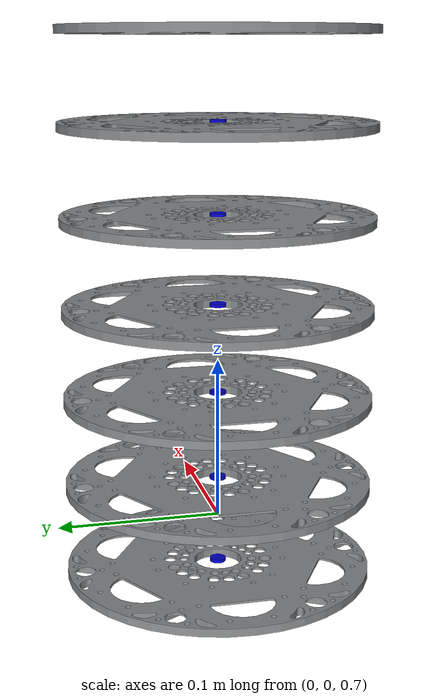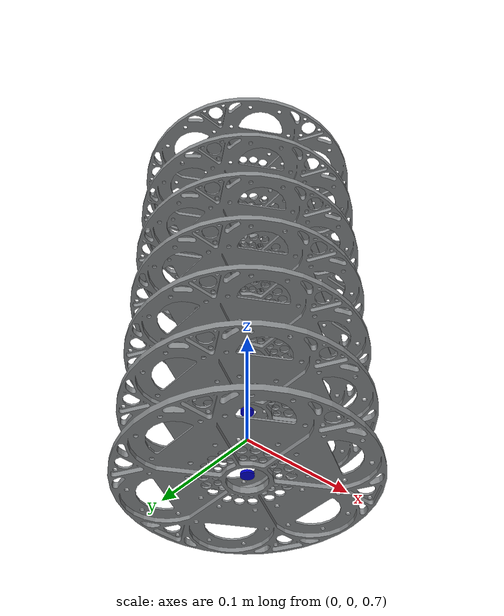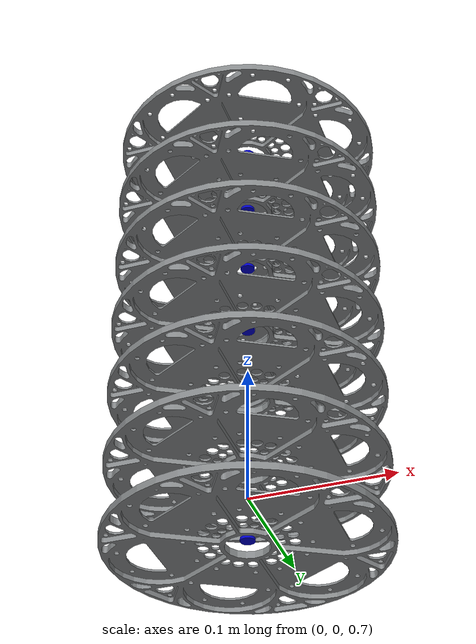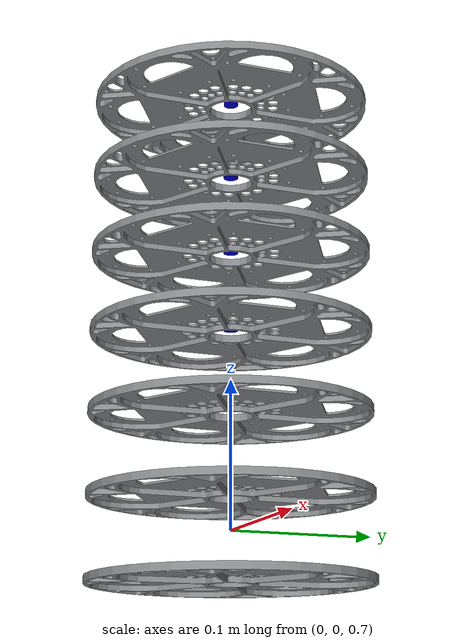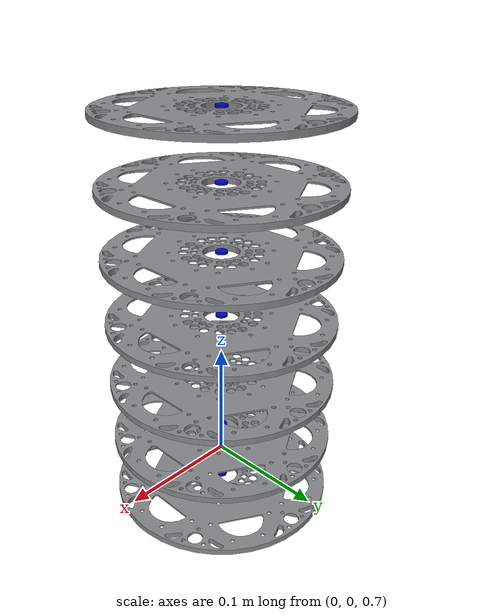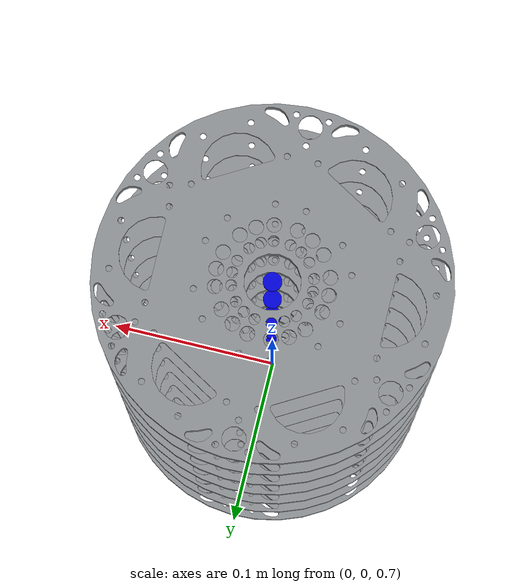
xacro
<?xml version="1.0"?>
<robot name="origarmRigidKE"
  xmlns:xacro="http://ros.org/wiki/xacro">

  <xacro:property name="radiusPlate" value="0.095" />

  <xacro:property name="alpha_seg_min" value="0" />
  <xacro:property name="alpha_seg_max" value="0.5" />
  <xacro:property name="beta_seg_min" value="${-pi*2}" />
  <xacro:property name="beta_seg_max" value="${pi*2}" />
  <xacro:property name="length_seg_offset" value="0.055" />
  <xacro:property name="length_seg_min" value="-0.02" />
  <xacro:property name="length_seg_max" value="0.03" />

  <!-- Import Rviz colors -->
  <xacro:include filename="$(find origarm_ros)/model/urdf/materials.xacro" />

  <link name="world"/>

  <joint name="fixed" type="fixed">
    <parent link="world"/>
    <child link="plate_-1"/>
    <origin xyz="0 0 1" rpy="${pi} 0 0"/>
  </joint>

  <xacro:macro name="plate" params="platenum">
    <link name="plate_${platenum}">
      <visual>
        <origin rpy="0 0 0" xyz="0 0 0"/>
        <geometry>
          <mesh filename="package://origarm_ros/model/mesh/origarmPlate_m.STL"/>
        </geometry>
        <material name="aluminum"/>
      </visual>
      <collision>
        <geometry>
          <cylinder radius="${radiusPlate}" length="0.005"/>
        </geometry>
      </collision>
      <inertial>
        <origin xyz="0 0 0" rpy="0 0 0"/>
        <mass value="0.127" />
        <inertia ixx="0.00032197" ixy="0.0" ixz="0.0" iyy="0.00032197" iyz="0.0" izz="0.00064284" />
      </inertial>
    </link>
  </xacro:macro>

  <xacro:macro name="phantom_link" params="snum num_in">
    <link name="phantom_link_${snum}_${num_in}">
      <visual>
        <geometry>
          <cylinder radius="0.005" length="0.002"/>
        </geometry>
        <origin xyz="0 0 0" rpy="0 0 0"/>
        <material name="blue"/>
      </visual>
      <inertial>
        <origin xyz="0 0 0" rpy="0 0 0"/>
        <mass value="0.01" />
        <inertia ixx="0.001" ixy="0.0" ixz="0.0" iyy="0.001" iyz="0.0" izz="0.001" />
      </inertial>
    </link>
  </xacro:macro>

  <xacro:macro name="phantom_joint_1_beta" params="snum">
    <joint name="phantom_joint_segment_${snum}_1_beta" type="revolute">
      <parent link="plate_${snum-1}"/>
      <child link="phantom_link_${snum}_${1}"/>
      <axis xyz="0 0 1"/>
      <origin xyz="0 0 0" />
      <limit effort="200" lower="${beta_seg_min}" upper="${beta_seg_max}" velocity="20"/>
      <dynamics damping="0.7" friction="0.3"/>
    </joint>
  </xacro:macro>

  <xacro:macro name="phantom_joint_2_alpha2" params="snum">
    <joint name="phantom_joint_segment_${snum}_2_alpha2" type="revolute">
      <parent link="phantom_link_${snum}_${1}"/>
      <child link="phantom_link_${snum}_${2}"/>
      <axis xyz="0 1 0"/>
      <origin xyz="0 0 0" />
      <limit effort="200" lower="${alpha_seg_min/2}" upper="${alpha_seg_max/2}" velocity="20"/>
      <dynamics damping="0.7" friction="0.3"/>
    </joint>
  </xacro:macro>

  <xacro:macro name="phantom_joint_3_translation" params="snum">
    <joint name="phantom_joint_segment_${snum}_3_translation" type="prismatic">
      <parent link="phantom_link_${snum}_${2}"/>
      <child link="phantom_link_${snum}_${3}"/>
      <axis xyz="0 0 1"/>
      <origin xyz="0 0 ${length_seg_offset}"/>
      <limit effort="200" lower="${length_seg_min}" upper="${length_seg_max}" velocity="20"/>
      <dynamics damping="0.7" friction="0.5"/>
    </joint>
  </xacro:macro>

  <xacro:macro name="phantom_joint_4_alpha2" params="snum">
    <joint name="phantom_joint_segment_${snum}_4_alpha2" type="revolute">
      <parent link="phantom_link_${snum}_${3}"/>
      <child link="phantom_link_${snum}_${4}"/>
      <axis xyz="0 1 0"/>
      <origin xyz="0 0 0" />
      <mimic joint="phantom_joint_segment_${snum}_2_alpha2" multiplier="1" offset="0" />
      <limit effort="200" lower="${alpha_seg_min/2}" upper="${alpha_seg_max/2}" velocity="20"/>
      <dynamics damping="0.7" friction="0.3"/>
    </joint>
  </xacro:macro>

  <xacro:macro name="phantom_joint_5_betaN" params="snum">
    <joint name="phantom_joint_segment_${snum}_5_betaN" type="revolute">
      <parent link="phantom_link_${snum}_${4}"/>
      <child link="plate_${snum}"/>
      <axis xyz="0 0 1"/>
      <origin xyz="0 0 0" />
      <mimic joint="phantom_joint_segment_${snum}_1_beta" multiplier="-1" offset="0" />
      <limit effort="200" lower="${beta_seg_min}" upper="${beta_seg_max}" velocity="20"/>
      <dynamics damping="0.7" friction="0.3"/>
    </joint>
  </xacro:macro>

  <xacro:macro name="segment" params="segnum">
    <xacro:phantom_joint_1_beta snum="${segnum}"/>
    <xacro:phantom_link snum="${segnum}" num_in="1"/>
    <xacro:phantom_joint_2_alpha2 snum="${segnum}"/>
    <xacro:phantom_link snum="${segnum}" num_in="2"/>
    <xacro:phantom_joint_3_translation snum="${segnum}"/>
    <xacro:phantom_link snum="${segnum}" num_in="3"/>
    <xacro:phantom_joint_4_alpha2 snum="${segnum}"/>
    <xacro:phantom_link snum="${segnum}" num_in="4"/>
    <xacro:phantom_joint_5_betaN snum="${segnum}"/>
    <xacro:plate platenum="${segnum}"/>
  </xacro:macro>

  <xacro:plate platenum="-1"/>
  <xacro:segment segnum="0"/>
  <xacro:segment segnum="1"/>
  <xacro:segment segnum="2"/>
  <xacro:segment segnum="3"/>
  <xacro:segment segnum="4"/>
  <xacro:segment segnum="5"/>

  <!-- ros_control plugin      -->
  <!-- Add gazebo transmission -->
  <gazebo>
    <plugin name="gazebo_ros_control" filename="libgazebo_ros_control.so">
      <robotNamespace>/origarmRigidKE</robotNamespace>
    </plugin>
  </gazebo>

  <xacro:macro name="joint_trans" params="segnum jointname">
    <transmission name="trans_segment_${segnum}_${jointname}">
      <type>transmission_interface/SimpleTransmission</type>
      <joint name="phantom_joint_segment_${segnum}_${jointname}">
        <hardwareInterface>hardware_interface/PositionJointInterface</hardwareInterface>
      </joint>
      <actuator name="actuator_segment_${segnum}_${jointname}">
        <hardwareInterface>hardware_interface/PositionJointInterface</hardwareInterface>
        <mechanicalReduction>1</mechanicalReduction>
      </actuator>
    </transmission>
  </xacro:macro>

  <xacro:macro name="seg_trans" params="snum">
    <xacro:joint_trans segnum="${snum}" jointname="1_beta"/>
    <xacro:joint_trans segnum="${snum}" jointname="2_alpha2"/>
    <xacro:joint_trans segnum="${snum}" jointname="3_translation"/>
    <xacro:joint_trans segnum="${snum}" jointname="4_alpha2"/>
    <xacro:joint_trans segnum="${snum}" jointname="5_betaN"/>
  </xacro:macro>

  <xacro:seg_trans snum="0"/>
  <xacro:seg_trans snum="1"/>
  <xacro:seg_trans snum="2"/>
  <xacro:seg_trans snum="3"/>
  <xacro:seg_trans snum="4"/>
  <xacro:seg_trans snum="5"/>

  <!-- Add gazebo dynamic labels for links-->
  <!-- gazebo dynamics of phantom links -->
  <xacro:macro name="gazebo_dynamics_link_phantom" params="snum lnum">
    <gazebo reference="phantom_link_${snum}_${lnum}">
      <gravity>false</gravity>
      <dampingFactor>0.1</dampingFactor>
      <mu1>0.2</mu1>
      <mu2>0.2</mu2>
      <kp>1e15</kp>
      <kd>1e13</kd>
      <selfCollide>true</selfCollide>
    </gazebo>
  </xacro:macro>

  <!-- gazebo dynamics of plates -->
  <xacro:macro name="gazebo_dynamics_link_plate" params="snum">
    <gazebo reference="plate_${snum}">
      <material>Gazebo/aluminum</material>
      <dampingFactor>0.1</dampingFactor>
      <mu1>0.2</mu1>
      <mu2>0.2</mu2>
      <kp>1e15</kp>
      <kd>1e13</kd>
    </gazebo>
  </xacro:macro>

  <xacro:macro name="gazebo_dynamics_link_seg" params="segnum">
    <xacro:gazebo_dynamics_link_phantom snum="${segnum}" lnum="0"/>
    <xacro:gazebo_dynamics_link_phantom snum="${segnum}" lnum="1"/>
    <xacro:gazebo_dynamics_link_phantom snum="${segnum}" lnum="2"/>
    <xacro:gazebo_dynamics_link_phantom snum="${segnum}" lnum="3"/>
    <xacro:gazebo_dynamics_link_phantom snum="${segnum}" lnum="4"/>
    <xacro:gazebo_dynamics_link_phantom snum="${segnum}" lnum="5"/>
    <xacro:gazebo_dynamics_link_plate snum="${segnum}"/>
  </xacro:macro>

  <xacro:gazebo_dynamics_link_seg segnum="0"/>
  <xacro:gazebo_dynamics_link_seg segnum="1"/>
  <xacro:gazebo_dynamics_link_seg segnum="2"/>
  <xacro:gazebo_dynamics_link_seg segnum="3"/>
  <xacro:gazebo_dynamics_link_seg segnum="4"/>
  <xacro:gazebo_dynamics_link_seg segnum="5"/>

  <!-- Add gazebo dynamic labels for links-->
  <!--Gazebo joint dynamics properties-->
  <xacro:macro name="gazebo_dynamics_joint_1_beta" params="segnum">
    <gazebo reference="phantom_joint_segment_${segnum}_1_beta">
    </gazebo>
  </xacro:macro>

  <xacro:macro name="gazebo_dynamics_joint_2_alpha2" params="segnum">
    <gazebo reference="phantom_joint_segment_${segnum}_2_alpha2">
      <springStiffness>20</springStiffness>
      <springReference>0</springReference>
    </gazebo>
  </xacro:macro>

  <xacro:macro name="gazebo_dynamics_joint_3_translation" params="segnum">
    <gazebo reference="phantom_joint_segment_${segnum}_3_translation">
      <springStiffness>15000</springStiffness>
      <springReference>0</springReference>
    </gazebo>
  </xacro:macro>

  <xacro:macro name="gazebo_dynamics_joint_4_alpha2" params="segnum">
    <gazebo reference="phantom_joint_segment_${segnum}_4_alpha2">
      <springStiffness>20</springStiffness>
      <springReference>0</springReference>
    </gazebo>
  </xacro:macro>

  <xacro:macro name="gazebo_dynamics_joint_5_betaN" params="segnum">
    <gazebo reference="phantom_joint_segment_${segnum}_5_betaN">
    </gazebo>
  </xacro:macro>

  <xacro:macro name="gazebo_dynamics_joint_seg" params="snum">
    <xacro:gazebo_dynamics_joint_1_beta segnum="${snum}"/>
    <xacro:gazebo_dynamics_joint_2_alpha2 segnum="${snum}"/>
    <xacro:gazebo_dynamics_joint_3_translation segnum="${snum}"/>
    <xacro:gazebo_dynamics_joint_4_alpha2 segnum="${snum}"/>
    <xacro:gazebo_dynamics_joint_5_betaN segnum="${snum}"/>
  </xacro:macro>

  <xacro:gazebo_dynamics_joint_seg snum="0"/>
  <xacro:gazebo_dynamics_joint_seg snum="1"/>
  <xacro:gazebo_dynamics_joint_seg snum="2"/>
  <xacro:gazebo_dynamics_joint_seg snum="3"/>
  <xacro:gazebo_dynamics_joint_seg snum="4"/>
  <xacro:gazebo_dynamics_joint_seg snum="5"/>

</robot>

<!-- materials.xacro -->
<robot>

  <material name="black">
    <color rgba="0.0 0.0 0.0 1.0"/>
  </material>

  <material name="blue">
    <color rgba="0.0 0.0 0.8 1.0"/>
  </material>

  <material name="green">
    <color rgba="0.0 0.8 0.0 1.0"/>
  </material>

  <material name="grey">
    <color rgba="0.2 0.2 0.2 1.0"/>
  </material>

  <material name="orange">
    <color rgba="${255/255} ${108/255} ${10/255} 1.0"/>
  </material>

  <material name="brown">
    <color rgba="${222/255} ${207/255} ${195/255} 1.0"/>
  </material>

  <material name="red">
    <color rgba="0.8 0.0 0.0 1.0"/>
  </material>

  <material name="white">
    <color rgba="1.0 1.0 1.0 1.0"/>
  </material>

  <material name="aluminum">
    <color rgba="${132/255} ${135/255} ${137/255} 1.0"/>
  </material>

</robot>
